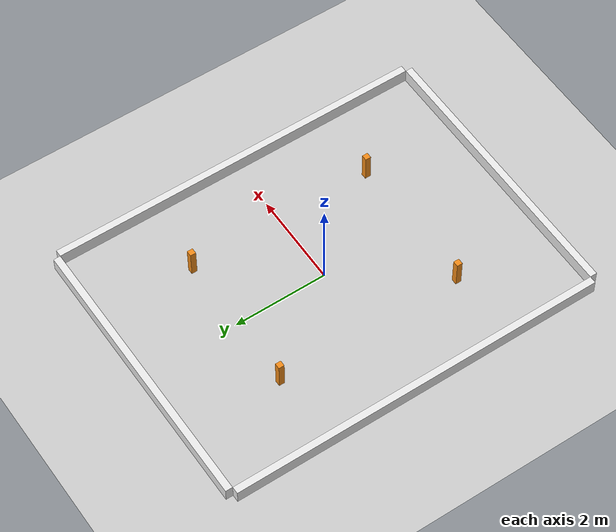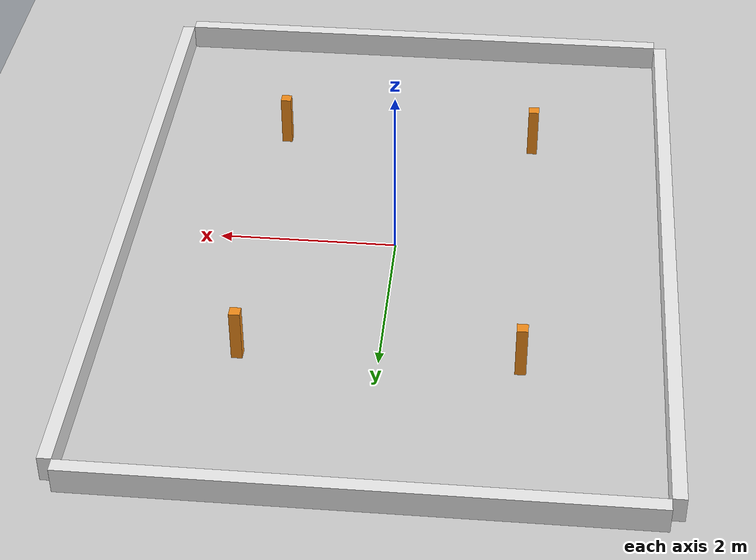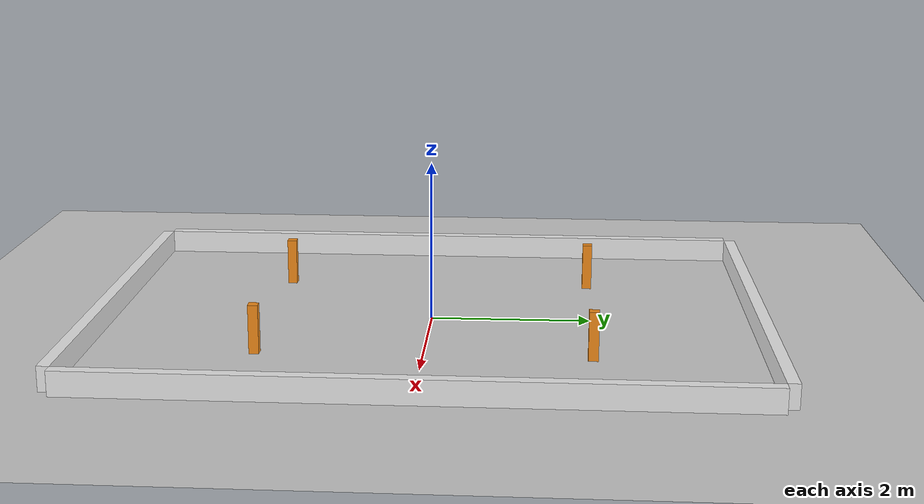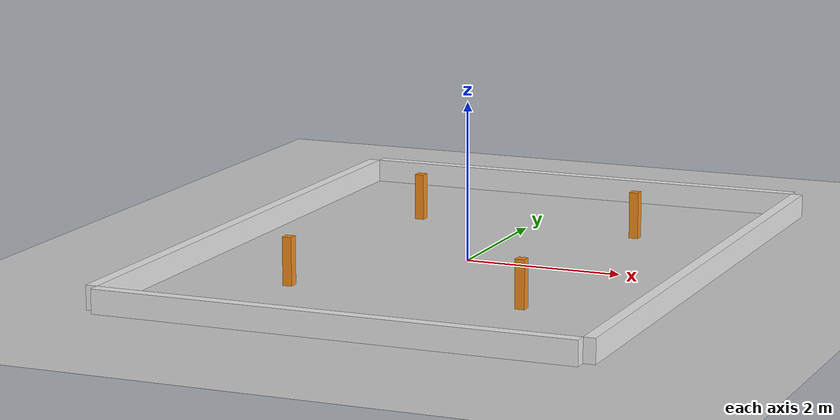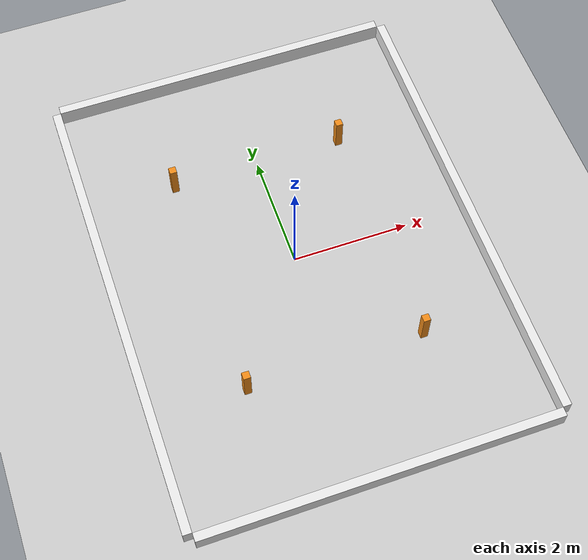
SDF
<?xml version='1.0'?>
<sdf version='1.6'>
  <world name='arena_6x8_empty'>
    <!-- 全局光照系统 -->
    <light name='sun' type='directional'>
      <cast_shadows>1</cast_shadows>
      <pose frame=''>0 0 10 0 -0 0</pose>
      <diffuse>0.8 0.8 0.8 1</diffuse>
      <specular>0.2 0.2 0.2 1</specular>
      <attenuation>
        <range>1000</range>
        <constant>0.9</constant>
        <linear>0.01</linear>
        <quadratic>0.001</quadratic>
      </attenuation>
      <direction>-0.5 0.1 -0.9</direction>
    </light>

    <!-- 地面平面 -->
    <model name='ground_plane'>
      <static>1</static>
      <link name='link'>
        <collision name='collision'>
          <geometry>
            <plane>
              <normal>0 0 1</normal>
              <size>100 100</size>
            </plane>
          </geometry>
          <surface>
            <contact>
              <collide_bitmask>65535</collide_bitmask>
              <ode/>
            </contact>
            <friction>
              <ode>
                <mu>100</mu>
                <mu2>50</mu2>
              </ode>
              <torsional>
                <ode/>
              </torsional>
            </friction>
            <bounce/>
          </surface>
          <max_contacts>10</max_contacts>
        </collision>
        <visual name='visual'>
          <cast_shadows>0</cast_shadows>
          <geometry>
            <plane>
              <normal>0 0 1</normal>
              <size>100 100</size>
            </plane>
          </geometry>
          <material>
            <script>
              <uri>file://media/materials/scripts/gazebo.material</uri>
              <name>Gazebo/Grey</name>
            </script>
          </material>
        </visual>
        <self_collide>0</self_collide>
        <enable_wind>0</enable_wind>
        <kinematic>0</kinematic>
      </link>
    </model>

    <!-- 物理与环境参数 -->
    <gravity>0 0 -9.8</gravity>
    <magnetic_field>6e-06 2.3e-05 -4.2e-05</magnetic_field>
    <atmosphere type='adiabatic'/>
    <physics name='default_physics' default='0' type='ode'>
      <max_step_size>0.001</max_step_size>
      <real_time_factor>1</real_time_factor>
      <real_time_update_rate>1000</real_time_update_rate>
    </physics>
    <scene>
      <ambient>0.4 0.4 0.4 1</ambient>
      <background>0.7 0.7 0.7 1</background>
      <shadows>1</shadows>
    </scene>

      <device>default</device>

    <wind/>
    <spherical_coordinates>
      <surface_model>EARTH_WGS84</surface_model>
      <latitude_deg>0</latitude_deg>
      <longitude_deg>0</longitude_deg>
      <elevation>0</elevation>
      <heading_deg>0</heading_deg>
    </spherical_coordinates>

    <!-- 6x8机器人对抗竞技场 - 完全空旷版 v1.0 -->
    <!-- 内部可玩区域：X轴(-3m ~ +3m)，Y轴(-4m ~ +4m) -->
    <!-- 设计理念：纯粹的开放空间，无任何内部障碍物 -->
    <!-- 适用场景：基础移动测试、速度测试、导航算法、简单追逐对抗 -->
    <model name='arena_6x8'>
      <pose frame=''>0 0 0 0 0 0</pose>

      <!-- 边界墙体 - 定义竞技场范围 -->
      <!-- 所有边界墙厚度0.15m，高度0.3m -->
      <!-- 边界墙使用白色材质，便于视觉识别 -->

      <!-- 北边界墙 (Y=+4.075m) -->
      <link name='Boundary_Wall_North'>
        <collision name='Boundary_Wall_North_Collision'>
          <geometry><box><size>6.0 0.15 0.3</size></box></geometry>
          <pose frame=''>0 0 0.15 0 0 0</pose>
        </collision>
        <visual name='Boundary_Wall_North_Visual'>
          <pose frame=''>0 0 0.15 0 0 0</pose>
          <geometry><box><size>6.0 0.15 0.3</size></box></geometry>
          <material>
            <script>
              <uri>file://media/materials/scripts/gazebo.material</uri>
              <name>Gazebo/White</name>
            </script>
          </material>
        </visual>
        <pose frame=''>0 4.075 0 0 0 0</pose>
      </link>

      <!-- 南边界墙 (Y=-4.075m) -->
      <link name='Boundary_Wall_South'>
        <collision name='Boundary_Wall_South_Collision'>
          <geometry><box><size>6.0 0.15 0.3</size></box></geometry>
          <pose frame=''>0 0 0.15 0 0 0</pose>
        </collision>
        <visual name='Boundary_Wall_South_Visual'>
          <pose frame=''>0 0 0.15 0 0 0</pose>
          <geometry><box><size>6.0 0.15 0.3</size></box></geometry>
          <material>
            <script>
              <uri>file://media/materials/scripts/gazebo.material</uri>
              <name>Gazebo/White</name>
            </script>
          </material>
        </visual>
        <pose frame=''>0 -4.075 0 0 0 0</pose>
      </link>

      <!-- 东边界墙 (X=+3.075m) -->
      <link name='Boundary_Wall_East'>
        <collision name='Boundary_Wall_East_Collision'>
          <geometry><box><size>0.15 8.0 0.3</size></box></geometry>
          <pose frame=''>0 0 0.15 0 0 0</pose>
        </collision>
        <visual name='Boundary_Wall_East_Visual'>
          <pose frame=''>0 0 0.15 0 0 0</pose>
          <geometry><box><size>0.15 8.0 0.3</size></box></geometry>
          <material>
            <script>
              <uri>file://media/materials/scripts/gazebo.material</uri>
              <name>Gazebo/White</name>
            </script>
          </material>
        </visual>
        <pose frame=''>3.075 0 0 0 0 0</pose>
      </link>

      <!-- 西边界墙 (X=-3.075m) -->
      <link name='Boundary_Wall_West'>
        <collision name='Boundary_Wall_West_Collision'>
          <geometry><box><size>0.15 8.0 0.3</size></box></geometry>
          <pose frame=''>0 0 0.15 0 0 0</pose>
        </collision>
        <visual name='Boundary_Wall_West_Visual'>
          <pose frame=''>0 0 0.15 0 0 0</pose>
          <geometry><box><size>0.15 8.0 0.3</size></box></geometry>
          <material>
            <script>
              <uri>file://media/materials/scripts/gazebo.material</uri>
              <name>Gazebo/White</name>
            </script>
          </material>
        </visual>
        <pose frame=''>-3.075 0 0 0 0 0</pose>
      </link>

      <static>1</static>
    </model>

    <!-- Minimal SLAM features: small posts near corners to keep the arena open -->
    <model name='slam_feature_posts'>
      <static>1</static>
      <link name='post_nw'>
        <pose frame=''>-1.5 2 0 0 0 0</pose>
        <collision name='post_nw_collision'>
          <geometry><box><size>0.12 0.12 0.6</size></box></geometry>
          <pose frame=''>0 0 0.3 0 0 0</pose>
        </collision>
        <visual name='post_nw_visual'>
          <geometry><box><size>0.12 0.12 0.6</size></box></geometry>
          <pose frame=''>0 0 0.3 0 0 0</pose>
          <material>
            <script>
              <uri>file://media/materials/scripts/gazebo.material</uri>
              <name>Gazebo/Orange</name>
            </script>
          </material>
        </visual>
      </link>

      <link name='post_ne'>
        <pose frame=''>1.5 2 0 0 0 0</pose>
        <collision name='post_ne_collision'>
          <geometry><box><size>0.12 0.12 0.6</size></box></geometry>
          <pose frame=''>0 0 0.3 0 0 0</pose>
        </collision>
        <visual name='post_ne_visual'>
          <geometry><box><size>0.12 0.12 0.6</size></box></geometry>
          <pose frame=''>0 0 0.3 0 0 0</pose>
          <material>
            <script>
              <uri>file://media/materials/scripts/gazebo.material</uri>
              <name>Gazebo/Orange</name>
            </script>
          </material>
        </visual>
      </link>

      <link name='post_sw'>
        <pose frame=''>-1.5 -2 0 0 0 0</pose>
        <collision name='post_sw_collision'>
          <geometry><box><size>0.12 0.12 0.6</size></box></geometry>
          <pose frame=''>0 0 0.3 0 0 0</pose>
        </collision>
        <visual name='post_sw_visual'>
          <geometry><box><size>0.12 0.12 0.6</size></box></geometry>
          <pose frame=''>0 0 0.3 0 0 0</pose>
          <material>
            <script>
              <uri>file://media/materials/scripts/gazebo.material</uri>
              <name>Gazebo/Orange</name>
            </script>
          </material>
        </visual>
      </link>

      <link name='post_se'>
        <pose frame=''>1.5 -2 0 0 0 0</pose>
        <collision name='post_se_collision'>
          <geometry><box><size>0.12 0.12 0.6</size></box></geometry>
          <pose frame=''>0 0 0.3 0 0 0</pose>
        </collision>
        <visual name='post_se_visual'>
          <geometry><box><size>0.12 0.12 0.6</size></box></geometry>
          <pose frame=''>0 0 0.3 0 0 0</pose>
          <material>
            <script>
              <uri>file://media/materials/scripts/gazebo.material</uri>
              <name>Gazebo/Orange</name>
            </script>
          </material>
        </visual>
      </link>
    </model>

    <!-- GUI相机初始位置 - 俯视整个竞技场 -->
    <gui fullscreen='0'>
      <camera name='user_camera'>
        <pose frame=''>-10 0 8 0 0.4 0</pose>
        <view_controller>orbit</view_controller>
        <projection_type>perspective</projection_type>
      </camera>
    </gui>
  </world>
</sdf>
